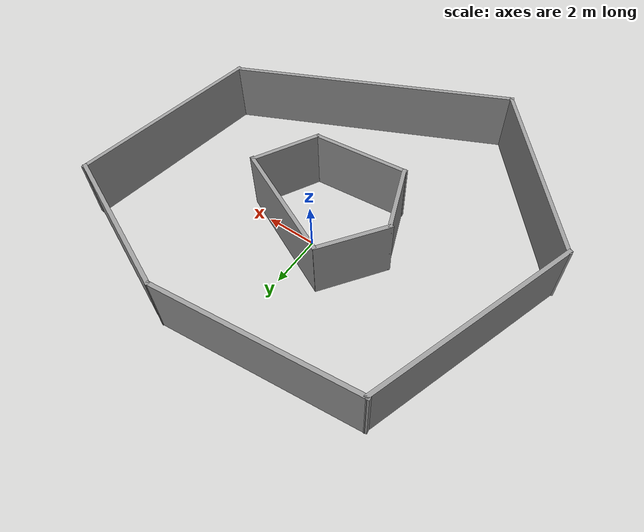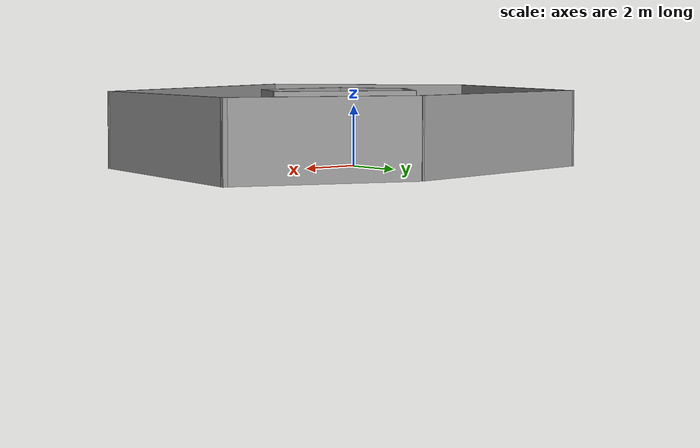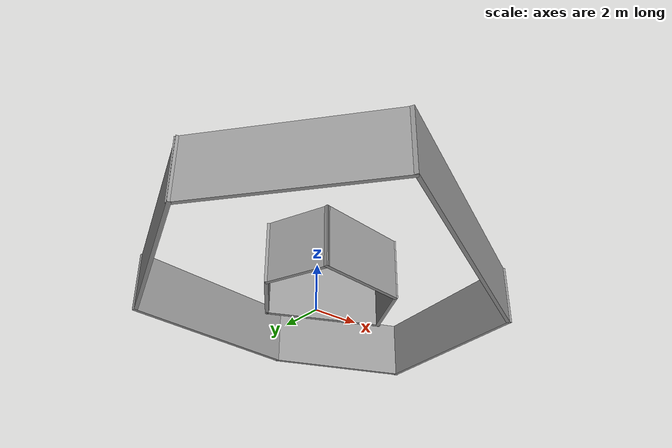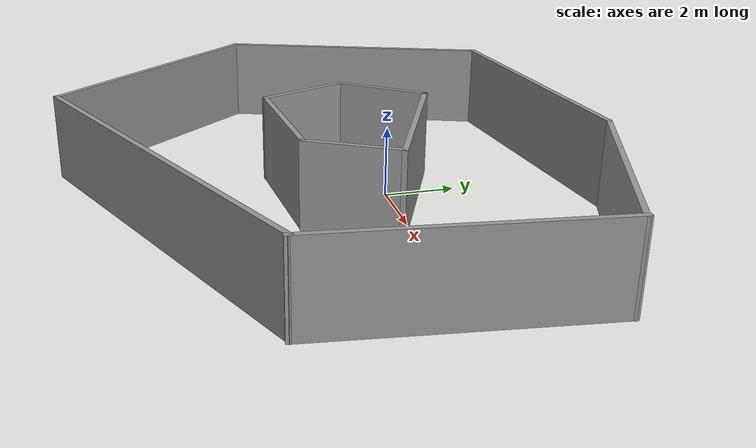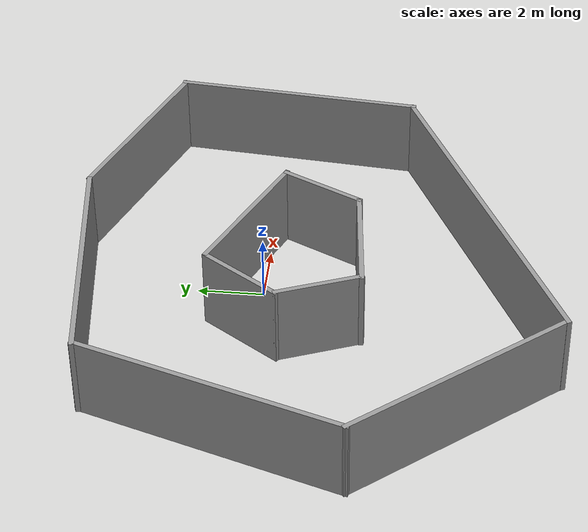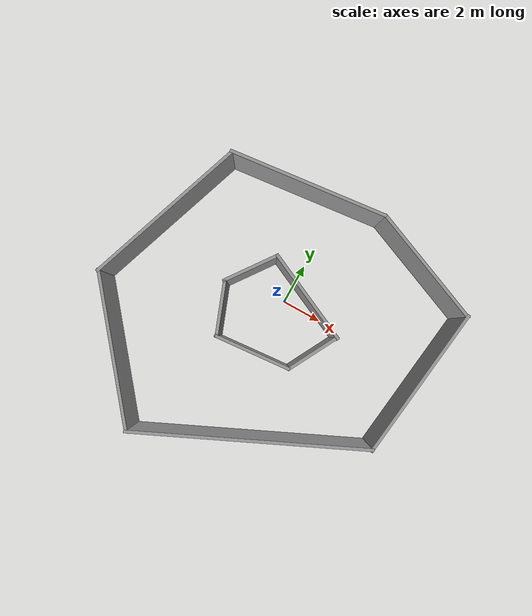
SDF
<?xml version='1.0'?>
<sdf version='1.6'>
  <model name='world_walls'>
    <pose frame=''>-0.253225 -1.67965 0 0 -0 0</pose>
    <link name='Wall_10'>
      <collision name='Wall_10_Collision'>
        <geometry>
          <box>
            <size>11.4246 0.15 2.5</size>
          </box>
        </geometry>
        <pose frame=''>0 0 1.25 0 -0 0</pose>
      </collision>
      <visual name='Wall_10_Visual'>
        <pose frame=''>0 0 1.25 0 -0 0</pose>
        <geometry>
          <box>
            <size>11.4246 0.15 2.5</size>
          </box>
        </geometry>
        <material>
          <script>
            <uri>file://media/materials/scripts/gazebo.material</uri>
            <name>Gazebo/Grey</name>
          </script>
          <ambient>1 1 1 1</ambient>
        </material>
        <meta>
          <layer>0</layer>
        </meta>
      </visual>
      <pose frame=''>1.96996 -4.77128 0 0 -0 0.442446</pose>
    </link>
    <link name='Wall_11'>
      <collision name='Wall_11_Collision'>
        <geometry>
          <box>
            <size>7.65878 0.15 2.5</size>
          </box>
        </geometry>
        <pose frame=''>0 0 1.25 0 -0 0</pose>
      </collision>
      <visual name='Wall_11_Visual'>
        <pose frame=''>0 0 1.25 0 -0 0</pose>
        <geometry>
          <box>
            <size>7.65878 0.15 2.5</size>
          </box>
        </geometry>
        <material>
          <script>
            <uri>file://media/materials/scripts/gazebo.material</uri>
            <name>Gazebo/Grey</name>
          </script>
          <ambient>1 1 1 1</ambient>
        </material>
        <meta>
          <layer>0</layer>
        </meta>
      </visual>
      <pose frame=''>7.45169 1.33624 0 0 -0 1.46746</pose>
    </link>
    <link name='Wall_13'>
      <collision name='Wall_13_Collision'>
        <geometry>
          <box>
            <size>7.72754 0.15 2.5</size>
          </box>
        </geometry>
        <pose frame=''>0 0 1.25 0 -0 0</pose>
      </collision>
      <visual name='Wall_13_Visual'>
        <pose frame=''>0 0 1.25 0 -0 0</pose>
        <geometry>
          <box>
            <size>7.72754 0.15 2.5</size>
          </box>
        </geometry>
        <material>
          <script>
            <uri>file://media/materials/scripts/gazebo.material</uri>
            <name>Gazebo/Grey</name>
          </script>
          <ambient>1 1 1 1</ambient>
        </material>
        <meta>
          <layer>0</layer>
        </meta>
      </visual>
      <pose frame=''>-1.47129 6.7323 0 0 -0 -3.02113</pose>
    </link>
    <link name='Wall_15'>
      <collision name='Wall_15_Collision'>
        <geometry>
          <box>
            <size>6.0659 0.15 2.5</size>
          </box>
        </geometry>
        <pose frame=''>0 0 1.25 0 -0 0</pose>
      </collision>
      <visual name='Wall_15_Visual'>
        <pose frame=''>0 0 1.25 0 -0 0</pose>
        <geometry>
          <box>
            <size>6.0659 0.15 2.5</size>
          </box>
        </geometry>
        <material>
          <script>
            <uri>file://media/materials/scripts/gazebo.material</uri>
            <name>Gazebo/Grey</name>
          </script>
          <ambient>1 1 1 1</ambient>
        </material>
        <meta>
          <layer>0</layer>
        </meta>
      </visual>
      <pose frame=''>5.08472 6.10887 0 0 -0 -0.373296</pose>
    </link>
    <link name='Wall_2'>
      <collision name='Wall_2_Collision'>
        <geometry>
          <box>
            <size>4.76973 0.15 2.5</size>
          </box>
        </geometry>
        <pose frame=''>0 0 1.25 0 -0 0</pose>
      </collision>
      <visual name='Wall_2_Visual'>
        <pose frame=''>0 0 1.25 0 -0 0</pose>
        <geometry>
          <box>
            <size>4.76973 0.15 2.5</size>
          </box>
        </geometry>
        <material>
          <script>
            <uri>file://media/materials/scripts/gazebo.material</uri>
            <name>Gazebo/Grey</name>
          </script>
          <ambient>1 1 1 1</ambient>
        </material>
        <meta>
          <layer>0</layer>
        </meta>
      </visual>
      <pose frame=''>1.0648 2.22243 0 0 -0 2.71602</pose>
    </link>
    <link name='Wall_3'>
      <collision name='Wall_3_Collision'>
        <geometry>
          <box>
            <size>2.81273 0.15 2.5</size>
          </box>
        </geometry>
        <pose frame=''>0 0 1.25 0 -0 0</pose>
      </collision>
      <visual name='Wall_3_Visual'>
        <pose frame=''>0 0 1.25 0 -0 0</pose>
        <geometry>
          <box>
            <size>2.81273 0.15 2.5</size>
          </box>
        </geometry>
        <material>
          <script>
            <uri>file://media/materials/scripts/gazebo.material</uri>
            <name>Gazebo/Grey</name>
          </script>
          <ambient>1 1 1 1</ambient>
        </material>
        <meta>
          <layer>0</layer>
        </meta>
      </visual>
      <pose frame=''>-1.84546 2.09083 0 0 -0 -2.18866</pose>
    </link>
    <link name='Wall_4'>
      <collision name='Wall_4_Collision'>
        <geometry>
          <box>
            <size>2.70005 0.15 2.5</size>
          </box>
        </geometry>
        <pose frame=''>0 0 1.25 0 -0 0</pose>
      </collision>
      <visual name='Wall_4_Visual'>
        <pose frame=''>0 0 1.25 0 -0 0</pose>
        <geometry>
          <box>
            <size>2.70005 0.15 2.5</size>
          </box>
        </geometry>
        <material>
          <script>
            <uri>file://media/materials/scripts/gazebo.material</uri>
            <name>Gazebo/Grey</name>
          </script>
          <ambient>1 1 1 1</ambient>
        </material>
        <meta>
          <layer>0</layer>
        </meta>
      </visual>
      <pose frame=''>-2.1228 -0.18404 0 0 -0 -1.20277</pose>
    </link>
    <link name='Wall_5'>
      <collision name='Wall_5_Collision'>
        <geometry>
          <box>
            <size>3.76768 0.15 2.5</size>
          </box>
        </geometry>
        <pose frame=''>0 0 1.25 0 -0 0</pose>
      </collision>
      <visual name='Wall_5_Visual'>
        <pose frame=''>0 0 1.25 0 -0 0</pose>
        <geometry>
          <box>
            <size>3.76768 0.15 2.5</size>
          </box>
        </geometry>
        <material>
          <script>
            <uri>file://media/materials/scripts/gazebo.material</uri>
            <name>Gazebo/Grey</name>
          </script>
          <ambient>1 1 1 1</ambient>
        </material>
        <meta>
          <layer>0</layer>
        </meta>
      </visual>
      <pose frame=''>0.101844 -1.20656 0 0 -0 0.092528</pose>
    </link>
    <link name='Wall_6'>
      <collision name='Wall_6_Collision'>
        <geometry>
          <box>
            <size>2.74939 0.15 2.5</size>
          </box>
        </geometry>
        <pose frame=''>0 0 1.25 0 -0 0</pose>
      </collision>
      <visual name='Wall_6_Visual'>
        <pose frame=''>0 0 1.25 0 -0 0</pose>
        <geometry>
          <box>
            <size>2.74939 0.15 2.5</size>
          </box>
        </geometry>
        <material>
          <script>
            <uri>file://media/materials/scripts/gazebo.material</uri>
            <name>Gazebo/Grey</name>
          </script>
          <ambient>1 1 1 1</ambient>
        </material>
        <meta>
          <layer>0</layer>
        </meta>
      </visual>
      <pose frame=''>2.53579 0.114694 0 0 -0 1.09297</pose>
    </link>
    <link name='Wall_8'>
      <collision name='Wall_8_Collision'>
        <geometry>
          <box>
            <size>8.2991 0.15 2.5</size>
          </box>
        </geometry>
        <pose frame=''>0 0 1.25 0 -0 0</pose>
      </collision>
      <visual name='Wall_8_Visual'>
        <pose frame=''>0 0 1.25 0 -0 0</pose>
        <geometry>
          <box>
            <size>8.2991 0.15 2.5</size>
          </box>
        </geometry>
        <material>
          <script>
            <uri>file://media/materials/scripts/gazebo.material</uri>
            <name>Gazebo/Grey</name>
          </script>
          <ambient>1 1 1 1</ambient>
        </material>
        <meta>
          <layer>0</layer>
        </meta>
      </visual>
      <pose frame=''>-6.51137 2.42193 0 0 -0 -1.90051</pose>
    </link>
    <link name='Wall_9'>
      <collision name='Wall_9_Collision'>
        <geometry>
          <box>
            <size>7.58169 0.15 2.5</size>
          </box>
        </geometry>
        <pose frame=''>0 0 1.25 0 -0 0</pose>
      </collision>
      <visual name='Wall_9_Visual'>
        <pose frame=''>0 0 1.25 0 -0 0</pose>
        <geometry>
          <box>
            <size>7.58169 0.15 2.5</size>
          </box>
        </geometry>
        <material>
          <script>
            <uri>file://media/materials/scripts/gazebo.material</uri>
            <name>Gazebo/Grey</name>
          </script>
          <ambient>1 1 1 1</ambient>
        </material>
        <meta>
          <layer>0</layer>
        </meta>
      </visual>
      <pose frame=''>-5.47755 -4.26856 0 0 -0 -0.885055</pose>
    </link>
    <static>1</static>
  </model>
</sdf>
